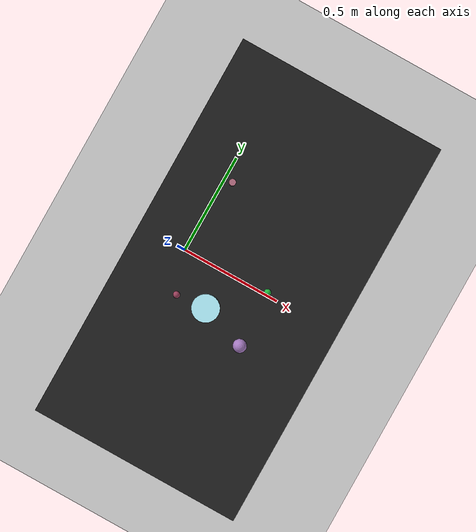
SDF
<?xml version="1.0" ?>
<sdf version="1.6">
  <world name="arm_world">
    <plugin filename="gz-sim-physics-system" name="gz::sim::systems::Physics">
      <engine>
        <filename>libgz-physics-bullet-featherstone-plugin.so</filename>
      </engine>
    </plugin>
    <plugin filename="gz-sim-user-commands-system" name="gz::sim::systems::UserCommands"/>
    <plugin filename="gz-sim-scene-broadcaster-system" name="gz::sim::systems::SceneBroadcaster"/>
    <plugin filename="gz-sim-sensors-system" name="gz::sim::systems::Sensors">
      <render_engine>ogre2</render_engine>
    </plugin>
    <gravity>0.0 0.0 -9.8</gravity>
    <scene>
      <shadows>false</shadows>
    </scene>
    <gui>
      <camera name="user_camera">
        <pose>0.75 -0.75 1.4 0 0.29 2.21</pose>
      </camera>
    </gui>
    <include>
      <uri>https://fuel.gazebosim.org/1.0/OpenRobotics/models/Sun</uri>
    </include>
    <model name="table">
      <static>true</static>
      <include>
        <uri>model://table</uri>
      </include>
      <pose>0.29 0 0 0 0 1.5708</pose>
    </model>
    <model name="ground_plane">
      <static>true</static>
      <link name="link">
        <collision name="collision">
          <geometry>
            <plane>
              <normal>0 0 1</normal>
            </plane>
          </geometry>
          <surface>
            <friction>
              <ode>
                <mu>1.0</mu>
                <mu2>1.0</mu2>
              </ode>
            </friction>
          </surface>
        </collision>
        <visual name="visual">
          <geometry>
            <plane>
              <normal>0 0 1</normal>
              <size>100 100</size>
            </plane>
          </geometry>
          <material>
            <ambient>0.8 0.8 0.8 1</ambient>
            <diffuse>0.8 0.8 0.8 1</diffuse>
            <specular>0.8 0.8 0.8 1</specular>
          </material>
        </visual>
      </link>
    </model>
    <model name="sphere_m_0">
      <pose>0.407 -0.198 1.05 0 0 5.44</pose>
      <link name="sphere_m_0_link">
        <collision name="sphere_m_0_collision">
          <geometry>
            <sphere>
              <radius>0.025</radius>
            </sphere>
          </geometry>
        </collision>
        <visual name="sphere_m_0_visual">
          <geometry>
            <sphere>
              <radius>0.025</radius>
            </sphere>
          </geometry>
          <material>
            <ambient>0.65 0.48 0.76 1</ambient>
            <diffuse>0.65 0.48 0.76 1</diffuse>
          </material>
        </visual>
        <velocity_decay>
          <linear>1</linear>
          <angular>1</angular>
        </velocity_decay>
      </link>
    </model>
    <model name="sphere_s_1">
      <pose>0.128 -0.15 1.05 0 0 0.17</pose>
      <link name="sphere_s_1_link">
        <collision name="sphere_s_1_collision">
          <geometry>
            <sphere>
              <radius>0.0125</radius>
            </sphere>
          </geometry>
        </collision>
        <visual name="sphere_s_1_visual">
          <geometry>
            <sphere>
              <radius>0.0125</radius>
            </sphere>
          </geometry>
          <material>
            <ambient>0.61 0.25 0.36 1</ambient>
            <diffuse>0.61 0.25 0.36 1</diffuse>
          </material>
        </visual>
        <velocity_decay>
          <linear>1</linear>
          <angular>1</angular>
        </velocity_decay>
      </link>
    </model>
    <model name="cylinder_s_2">
      <pose>0.107 0.286 1.05 0 0 3.92</pose>
      <link name="cylinder_s_2_link">
        <collision name="cylinder_s_2_collision">
          <geometry>
            <cylinder>
              <radius>0.0125</radius>
              <length>0.0125</length>
            </cylinder>
          </geometry>
        </collision>
        <visual name="cylinder_s_2_visual">
          <geometry>
            <cylinder>
              <radius>0.0125</radius>
              <length>0.0125</length>
            </cylinder>
          </geometry>
          <material>
            <ambient>0.7 0.42 0.5 1</ambient>
            <diffuse>0.7 0.42 0.5 1</diffuse>
          </material>
        </visual>
        <velocity_decay>
          <linear>1</linear>
          <angular>1</angular>
        </velocity_decay>
      </link>
    </model>
    <model name="cylinder_l_3">
      <pose>0.24 -0.141 1.05 0 0 3.44</pose>
      <link name="cylinder_l_3_link">
        <collision name="cylinder_l_3_collision">
          <geometry>
            <cylinder>
              <radius>0.05</radius>
              <length>0.05</length>
            </cylinder>
          </geometry>
        </collision>
        <visual name="cylinder_l_3_visual">
          <geometry>
            <cylinder>
              <radius>0.05</radius>
              <length>0.05</length>
            </cylinder>
          </geometry>
          <material>
            <ambient>0.69 0.93 0.98 1</ambient>
            <diffuse>0.69 0.93 0.98 1</diffuse>
          </material>
        </visual>
        <velocity_decay>
          <linear>1</linear>
          <angular>1</angular>
        </velocity_decay>
      </link>
    </model>
    <model name="sphere_s_4">
      <pose>0.401 0.012 1.05 0 0 5.11</pose>
      <link name="sphere_s_4_link">
        <collision name="sphere_s_4_collision">
          <geometry>
            <sphere>
              <radius>0.0125</radius>
            </sphere>
          </geometry>
        </collision>
        <visual name="sphere_s_4_visual">
          <geometry>
            <sphere>
              <radius>0.0125</radius>
            </sphere>
          </geometry>
          <material>
            <ambient>0.13 0.73 0.25 1</ambient>
            <diffuse>0.13 0.73 0.25 1</diffuse>
          </material>
        </visual>
        <velocity_decay>
          <linear>1</linear>
          <angular>1</angular>
        </velocity_decay>
      </link>
    </model>
  </world>
</sdf>

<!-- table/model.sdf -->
<sdf version="1.5">
  <model name="table">
    <static>true</static>
    <link name="link">
      <collision name="surface">
        <pose>0 0 1.0 0 0 0</pose>
        <geometry>
          <box>
            <size>1.5 0.8 0.03</size>
          </box>
        </geometry>
        <surface>
          <friction>
            <ode>
              <mu>0.6</mu>
              <mu2>0.6</mu2>
            </ode>
          </friction>
        </surface>
      </collision>
      <visual name="surface">
        <pose>0 0 1.0 0 0 0</pose>
        <geometry>
          <box>
            <size>1.5 0.8 0.03</size>
          </box>
        </geometry>
        <material>
          <script>
            <uri>file://media/materials/scripts/gazebo.material</uri>
            <name>Gazebo/Black</name>
          </script>
        </material>
      </visual>
      <collision name="front_left_leg">
        <pose>0.68 0.38 0.5 0 0 0</pose>
        <geometry>
          <cylinder>
            <radius>0.02</radius>
            <length>1.0</length>
          </cylinder>
        </geometry>
      </collision>
      <visual name="front_left_leg">
        <pose>0.68 0.38 0.5 0 0 0</pose>
        <geometry>
          <cylinder>
            <radius>0.02</radius>
            <length>1.0</length>
          </cylinder>
        </geometry>
        <material>
          <script>
            <uri>file://media/materials/scripts/gazebo.material</uri>
            <name>Gazebo/Black</name>
          </script>
        </material>
      </visual>
      <collision name="front_right_leg">
        <pose>0.68 -0.38 0.5 0 0 0</pose>
        <geometry>
          <cylinder>
            <radius>0.02</radius>
            <length>1.0</length>
          </cylinder>
        </geometry>
      </collision>
      <visual name="front_right_leg">
        <pose>0.68 -0.38 0.5 0 0 0</pose>
        <geometry>
          <cylinder>
            <radius>0.02</radius>
            <length>1.0</length>
          </cylinder>
        </geometry>
        <material>
          <script>
            <uri>file://media/materials/scripts/gazebo.material</uri>
            <name>Gazebo/Black</name>
          </script>
        </material>
      </visual>
      <collision name="back_right_leg">
        <pose>-0.68 -0.38 0.5 0 0 0</pose>
        <geometry>
          <cylinder>
            <radius>0.02</radius>
            <length>1.0</length>
          </cylinder>
        </geometry>
      </collision>
      <visual name="back_right_leg">
        <pose>-0.68 -0.38 0.5 0 0 0</pose>
        <geometry>
          <cylinder>
            <radius>0.02</radius>
            <length>1.0</length>
          </cylinder>
        </geometry>
        <material>
          <script>
            <uri>file://media/materials/scripts/gazebo.material</uri>
            <name>Gazebo/Black</name>
          </script>
        </material>
      </visual>
      <collision name="back_left_leg">
        <pose>-0.68 0.38 0.5 0 0 0</pose>
        <geometry>
          <cylinder>
            <radius>0.02</radius>
            <length>1.0</length>
          </cylinder>
        </geometry>
      </collision>
      <visual name="back_left_leg">
        <pose>-0.68 0.38 0.5 0 0 0</pose>
        <geometry>
          <cylinder>
            <radius>0.02</radius>
            <length>1.0</length>
          </cylinder>
        </geometry>
        <material>
          <script>
            <uri>file://media/materials/scripts/gazebo.material</uri>
            <name>Gazebo/Black</name>
          </script>
        </material>
      </visual>
    </link>
  </model>
</sdf>
